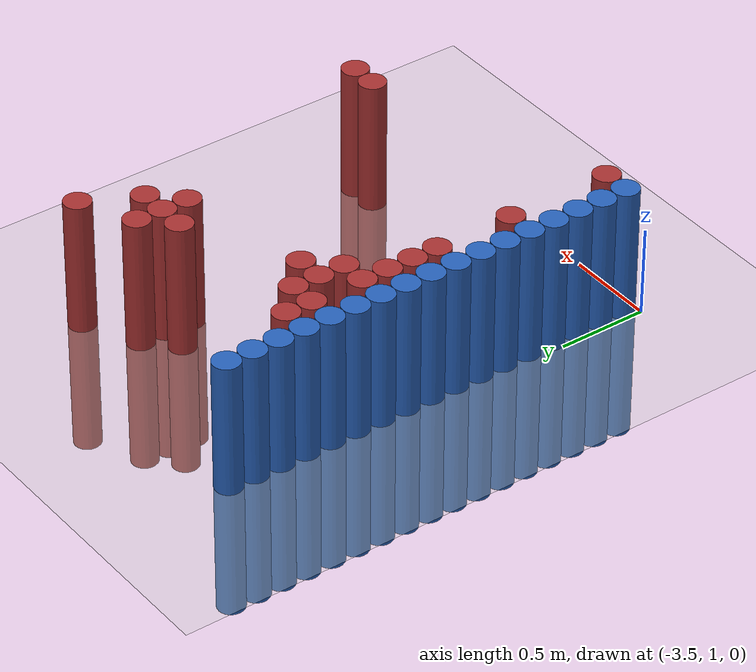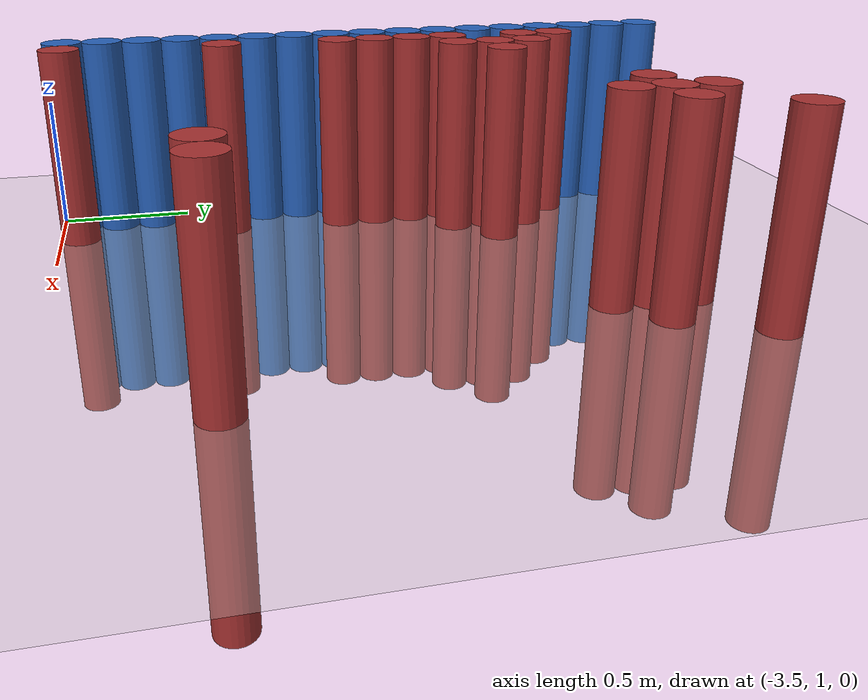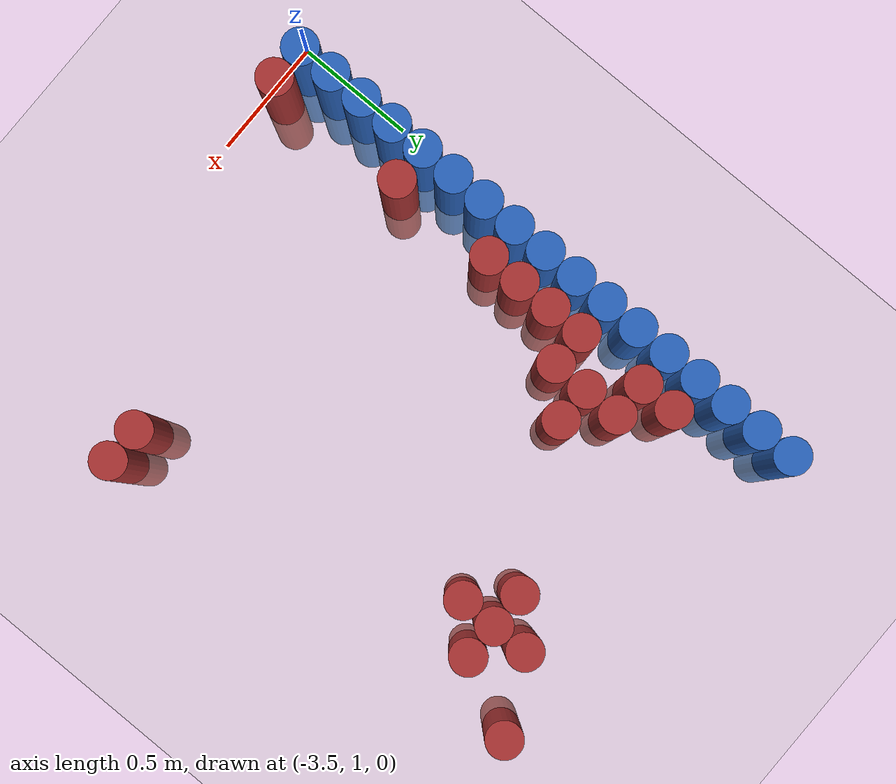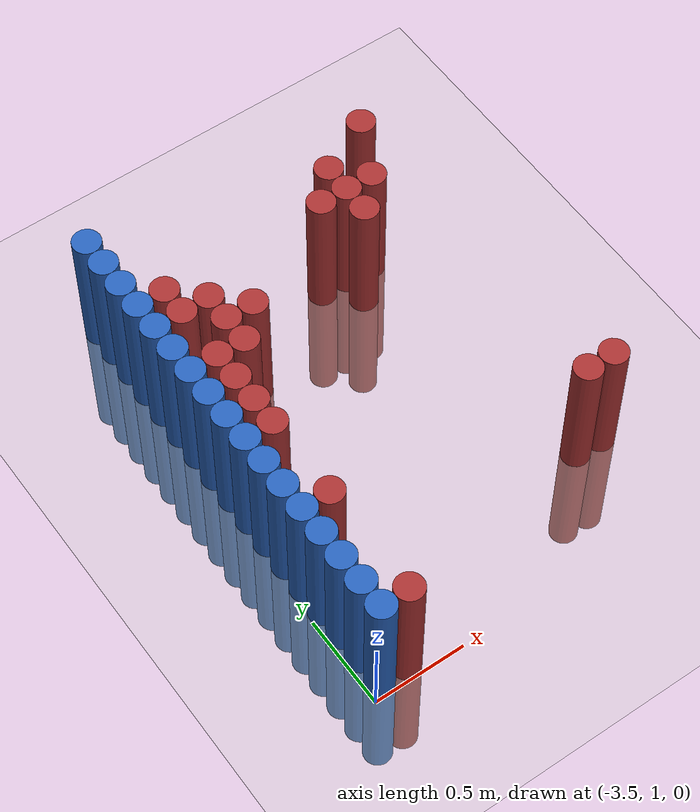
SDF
<sdf version="1.6">
 <world name="default">
  <model name="ground_plane">
   <static>1</static>
   <link name="link">
    <collision name="collision">
     <geometry><plane><normal>0 0 1</normal><size>100 100</size></plane></geometry>
     <surface><friction><ode><mu>100</mu><mu2>50</mu2></ode></friction></surface>
    </collision>
    <visual name="visual">
     <cast_shadows>0</cast_shadows>
     <geometry><plane><normal>0 0 1</normal><size>100 100</size></plane></geometry>
     <material>
      <script><uri>file://media/materials/scripts/gazebo.material</uri><name>Gazebo/Grey</name></script>
     </material>
    </visual>
   </link>
  </model>
  <model name="unit_cylinder_129">
   <static>1</static>
   <pose>-3.425000 1.075000 0.000000 0.000000 0.000000 0.000000</pose>
   <link name="link">
    <inertial>
     <mass>1</mass>
     <inertia><ixx>0.145833</ixx><ixy>0</ixy><ixz>0</ixz><iyy>0.145833</iyy><iyz>0</iyz><izz>0.125</izz></inertia>
    </inertial>
    <collision name="collision">
     <geometry><cylinder><radius>0.075000</radius><length>1.5</length></cylinder></geometry>
    </collision>
    <visual name="visual">
     <geometry><cylinder><radius>0.075000</radius><length>1.5</length></cylinder></geometry>
     <material>
      <ambient>0.152000 0.379000 0.720000 1</ambient>
      <diffuse>0.152000 0.379000 0.720000 1</diffuse>
     </material>
     <material>
      <script><name>Gazebo/Grey</name><uri>file://media/materials/scripts/gazebo.material</uri></script>
     </material>
    </visual>
   </link>
  </model>
  <model name="unit_cylinder_131">
   <static>1</static>
   <pose>-3.425000 1.225000 0.000000 0.000000 0.000000 0.000000</pose>
   <link name="link">
    <inertial>
     <mass>1</mass>
     <inertia><ixx>0.145833</ixx><ixy>0</ixy><ixz>0</ixz><iyy>0.145833</iyy><iyz>0</iyz><izz>0.125</izz></inertia>
    </inertial>
    <collision name="collision">
     <geometry><cylinder><radius>0.075000</radius><length>1.5</length></cylinder></geometry>
    </collision>
    <visual name="visual">
     <geometry><cylinder><radius>0.075000</radius><length>1.5</length></cylinder></geometry>
     <material>
      <ambient>0.152000 0.379000 0.720000 1</ambient>
      <diffuse>0.152000 0.379000 0.720000 1</diffuse>
     </material>
     <material>
      <script><name>Gazebo/Grey</name><uri>file://media/materials/scripts/gazebo.material</uri></script>
     </material>
    </visual>
   </link>
  </model>
  <model name="unit_cylinder_133">
   <static>1</static>
   <pose>-3.425000 1.375000 0.000000 0.000000 0.000000 0.000000</pose>
   <link name="link">
    <inertial>
     <mass>1</mass>
     <inertia><ixx>0.145833</ixx><ixy>0</ixy><ixz>0</ixz><iyy>0.145833</iyy><iyz>0</iyz><izz>0.125</izz></inertia>
    </inertial>
    <collision name="collision">
     <geometry><cylinder><radius>0.075000</radius><length>1.5</length></cylinder></geometry>
    </collision>
    <visual name="visual">
     <geometry><cylinder><radius>0.075000</radius><length>1.5</length></cylinder></geometry>
     <material>
      <ambient>0.152000 0.379000 0.720000 1</ambient>
      <diffuse>0.152000 0.379000 0.720000 1</diffuse>
     </material>
     <material>
      <script><name>Gazebo/Grey</name><uri>file://media/materials/scripts/gazebo.material</uri></script>
     </material>
    </visual>
   </link>
  </model>
  <model name="unit_cylinder_135">
   <static>1</static>
   <pose>-3.425000 1.525000 0.000000 0.000000 0.000000 0.000000</pose>
   <link name="link">
    <inertial>
     <mass>1</mass>
     <inertia><ixx>0.145833</ixx><ixy>0</ixy><ixz>0</ixz><iyy>0.145833</iyy><iyz>0</iyz><izz>0.125</izz></inertia>
    </inertial>
    <collision name="collision">
     <geometry><cylinder><radius>0.075000</radius><length>1.5</length></cylinder></geometry>
    </collision>
    <visual name="visual">
     <geometry><cylinder><radius>0.075000</radius><length>1.5</length></cylinder></geometry>
     <material>
      <ambient>0.152000 0.379000 0.720000 1</ambient>
      <diffuse>0.152000 0.379000 0.720000 1</diffuse>
     </material>
     <material>
      <script><name>Gazebo/Grey</name><uri>file://media/materials/scripts/gazebo.material</uri></script>
     </material>
    </visual>
   </link>
  </model>
  <model name="unit_cylinder_137">
   <static>1</static>
   <pose>-3.425000 1.675000 0.000000 0.000000 0.000000 0.000000</pose>
   <link name="link">
    <inertial>
     <mass>1</mass>
     <inertia><ixx>0.145833</ixx><ixy>0</ixy><ixz>0</ixz><iyy>0.145833</iyy><iyz>0</iyz><izz>0.125</izz></inertia>
    </inertial>
    <collision name="collision">
     <geometry><cylinder><radius>0.075000</radius><length>1.5</length></cylinder></geometry>
    </collision>
    <visual name="visual">
     <geometry><cylinder><radius>0.075000</radius><length>1.5</length></cylinder></geometry>
     <material>
      <ambient>0.152000 0.379000 0.720000 1</ambient>
      <diffuse>0.152000 0.379000 0.720000 1</diffuse>
     </material>
     <material>
      <script><name>Gazebo/Grey</name><uri>file://media/materials/scripts/gazebo.material</uri></script>
     </material>
    </visual>
   </link>
  </model>
  <model name="unit_cylinder_139">
   <static>1</static>
   <pose>-3.425000 1.825000 0.000000 0.000000 0.000000 0.000000</pose>
   <link name="link">
    <inertial>
     <mass>1</mass>
     <inertia><ixx>0.145833</ixx><ixy>0</ixy><ixz>0</ixz><iyy>0.145833</iyy><iyz>0</iyz><izz>0.125</izz></inertia>
    </inertial>
    <collision name="collision">
     <geometry><cylinder><radius>0.075000</radius><length>1.5</length></cylinder></geometry>
    </collision>
    <visual name="visual">
     <geometry><cylinder><radius>0.075000</radius><length>1.5</length></cylinder></geometry>
     <material>
      <ambient>0.152000 0.379000 0.720000 1</ambient>
      <diffuse>0.152000 0.379000 0.720000 1</diffuse>
     </material>
     <material>
      <script><name>Gazebo/Grey</name><uri>file://media/materials/scripts/gazebo.material</uri></script>
     </material>
    </visual>
   </link>
  </model>
  <model name="unit_cylinder_141">
   <static>1</static>
   <pose>-3.425000 1.975000 0.000000 0.000000 0.000000 0.000000</pose>
   <link name="link">
    <inertial>
     <mass>1</mass>
     <inertia><ixx>0.145833</ixx><ixy>0</ixy><ixz>0</ixz><iyy>0.145833</iyy><iyz>0</iyz><izz>0.125</izz></inertia>
    </inertial>
    <collision name="collision">
     <geometry><cylinder><radius>0.075000</radius><length>1.5</length></cylinder></geometry>
    </collision>
    <visual name="visual">
     <geometry><cylinder><radius>0.075000</radius><length>1.5</length></cylinder></geometry>
     <material>
      <ambient>0.152000 0.379000 0.720000 1</ambient>
      <diffuse>0.152000 0.379000 0.720000 1</diffuse>
     </material>
     <material>
      <script><name>Gazebo/Grey</name><uri>file://media/materials/scripts/gazebo.material</uri></script>
     </material>
    </visual>
   </link>
  </model>
  <model name="unit_cylinder_143">
   <static>1</static>
   <pose>-3.425000 2.125000 0.000000 0.000000 0.000000 0.000000</pose>
   <link name="link">
    <inertial>
     <mass>1</mass>
     <inertia><ixx>0.145833</ixx><ixy>0</ixy><ixz>0</ixz><iyy>0.145833</iyy><iyz>0</iyz><izz>0.125</izz></inertia>
    </inertial>
    <collision name="collision">
     <geometry><cylinder><radius>0.075000</radius><length>1.5</length></cylinder></geometry>
    </collision>
    <visual name="visual">
     <geometry><cylinder><radius>0.075000</radius><length>1.5</length></cylinder></geometry>
     <material>
      <ambient>0.152000 0.379000 0.720000 1</ambient>
      <diffuse>0.152000 0.379000 0.720000 1</diffuse>
     </material>
     <material>
      <script><name>Gazebo/Grey</name><uri>file://media/materials/scripts/gazebo.material</uri></script>
     </material>
    </visual>
   </link>
  </model>
  <model name="unit_cylinder_145">
   <static>1</static>
   <pose>-3.425000 2.275000 0.000000 0.000000 0.000000 0.000000</pose>
   <link name="link">
    <inertial>
     <mass>1</mass>
     <inertia><ixx>0.145833</ixx><ixy>0</ixy><ixz>0</ixz><iyy>0.145833</iyy><iyz>0</iyz><izz>0.125</izz></inertia>
    </inertial>
    <collision name="collision">
     <geometry><cylinder><radius>0.075000</radius><length>1.5</length></cylinder></geometry>
    </collision>
    <visual name="visual">
     <geometry><cylinder><radius>0.075000</radius><length>1.5</length></cylinder></geometry>
     <material>
      <ambient>0.152000 0.379000 0.720000 1</ambient>
      <diffuse>0.152000 0.379000 0.720000 1</diffuse>
     </material>
     <material>
      <script><name>Gazebo/Grey</name><uri>file://media/materials/scripts/gazebo.material</uri></script>
     </material>
    </visual>
   </link>
  </model>
  <model name="unit_cylinder_147">
   <static>1</static>
   <pose>-3.425000 2.425000 0.000000 0.000000 0.000000 0.000000</pose>
   <link name="link">
    <inertial>
     <mass>1</mass>
     <inertia><ixx>0.145833</ixx><ixy>0</ixy><ixz>0</ixz><iyy>0.145833</iyy><iyz>0</iyz><izz>0.125</izz></inertia>
    </inertial>
    <collision name="collision">
     <geometry><cylinder><radius>0.075000</radius><length>1.5</length></cylinder></geometry>
    </collision>
    <visual name="visual">
     <geometry><cylinder><radius>0.075000</radius><length>1.5</length></cylinder></geometry>
     <material>
      <ambient>0.152000 0.379000 0.720000 1</ambient>
      <diffuse>0.152000 0.379000 0.720000 1</diffuse>
     </material>
     <material>
      <script><name>Gazebo/Grey</name><uri>file://media/materials/scripts/gazebo.material</uri></script>
     </material>
    </visual>
   </link>
  </model>
  <model name="unit_cylinder_149">
   <static>1</static>
   <pose>-3.425000 2.575000 0.000000 0.000000 0.000000 0.000000</pose>
   <link name="link">
    <inertial>
     <mass>1</mass>
     <inertia><ixx>0.145833</ixx><ixy>0</ixy><ixz>0</ixz><iyy>0.145833</iyy><iyz>0</iyz><izz>0.125</izz></inertia>
    </inertial>
    <collision name="collision">
     <geometry><cylinder><radius>0.075000</radius><length>1.5</length></cylinder></geometry>
    </collision>
    <visual name="visual">
     <geometry><cylinder><radius>0.075000</radius><length>1.5</length></cylinder></geometry>
     <material>
      <ambient>0.152000 0.379000 0.720000 1</ambient>
      <diffuse>0.152000 0.379000 0.720000 1</diffuse>
     </material>
     <material>
      <script><name>Gazebo/Grey</name><uri>file://media/materials/scripts/gazebo.material</uri></script>
     </material>
    </visual>
   </link>
  </model>
  <model name="unit_cylinder_151">
   <static>1</static>
   <pose>-3.425000 2.725000 0.000000 0.000000 0.000000 0.000000</pose>
   <link name="link">
    <inertial>
     <mass>1</mass>
     <inertia><ixx>0.145833</ixx><ixy>0</ixy><ixz>0</ixz><iyy>0.145833</iyy><iyz>0</iyz><izz>0.125</izz></inertia>
    </inertial>
    <collision name="collision">
     <geometry><cylinder><radius>0.075000</radius><length>1.5</length></cylinder></geometry>
    </collision>
    <visual name="visual">
     <geometry><cylinder><radius>0.075000</radius><length>1.5</length></cylinder></geometry>
     <material>
      <ambient>0.152000 0.379000 0.720000 1</ambient>
      <diffuse>0.152000 0.379000 0.720000 1</diffuse>
     </material>
     <material>
      <script><name>Gazebo/Grey</name><uri>file://media/materials/scripts/gazebo.material</uri></script>
     </material>
    </visual>
   </link>
  </model>
  <model name="unit_cylinder_153">
   <static>1</static>
   <pose>-3.425000 2.875000 0.000000 0.000000 0.000000 0.000000</pose>
   <link name="link">
    <inertial>
     <mass>1</mass>
     <inertia><ixx>0.145833</ixx><ixy>0</ixy><ixz>0</ixz><iyy>0.145833</iyy><iyz>0</iyz><izz>0.125</izz></inertia>
    </inertial>
    <collision name="collision">
     <geometry><cylinder><radius>0.075000</radius><length>1.5</length></cylinder></geometry>
    </collision>
    <visual name="visual">
     <geometry><cylinder><radius>0.075000</radius><length>1.5</length></cylinder></geometry>
     <material>
      <ambient>0.152000 0.379000 0.720000 1</ambient>
      <diffuse>0.152000 0.379000 0.720000 1</diffuse>
     </material>
     <material>
      <script><name>Gazebo/Grey</name><uri>file://media/materials/scripts/gazebo.material</uri></script>
     </material>
    </visual>
   </link>
  </model>
  <model name="unit_cylinder_155">
   <static>1</static>
   <pose>-3.425000 3.025000 0.000000 0.000000 0.000000 0.000000</pose>
   <link name="link">
    <inertial>
     <mass>1</mass>
     <inertia><ixx>0.145833</ixx><ixy>0</ixy><ixz>0</ixz><iyy>0.145833</iyy><iyz>0</iyz><izz>0.125</izz></inertia>
    </inertial>
    <collision name="collision">
     <geometry><cylinder><radius>0.075000</radius><length>1.5</length></cylinder></geometry>
    </collision>
    <visual name="visual">
     <geometry><cylinder><radius>0.075000</radius><length>1.5</length></cylinder></geometry>
     <material>
      <ambient>0.152000 0.379000 0.720000 1</ambient>
      <diffuse>0.152000 0.379000 0.720000 1</diffuse>
     </material>
     <material>
      <script><name>Gazebo/Grey</name><uri>file://media/materials/scripts/gazebo.material</uri></script>
     </material>
    </visual>
   </link>
  </model>
  <model name="unit_cylinder_157">
   <static>1</static>
   <pose>-3.425000 3.175000 0.000000 0.000000 0.000000 0.000000</pose>
   <link name="link">
    <inertial>
     <mass>1</mass>
     <inertia><ixx>0.145833</ixx><ixy>0</ixy><ixz>0</ixz><iyy>0.145833</iyy><iyz>0</iyz><izz>0.125</izz></inertia>
    </inertial>
    <collision name="collision">
     <geometry><cylinder><radius>0.075000</radius><length>1.5</length></cylinder></geometry>
    </collision>
    <visual name="visual">
     <geometry><cylinder><radius>0.075000</radius><length>1.5</length></cylinder></geometry>
     <material>
      <ambient>0.152000 0.379000 0.720000 1</ambient>
      <diffuse>0.152000 0.379000 0.720000 1</diffuse>
     </material>
     <material>
      <script><name>Gazebo/Grey</name><uri>file://media/materials/scripts/gazebo.material</uri></script>
     </material>
    </visual>
   </link>
  </model>
  <model name="unit_cylinder_159">
   <static>1</static>
   <pose>-3.425000 3.325000 0.000000 0.000000 0.000000 0.000000</pose>
   <link name="link">
    <inertial>
     <mass>1</mass>
     <inertia><ixx>0.145833</ixx><ixy>0</ixy><ixz>0</ixz><iyy>0.145833</iyy><iyz>0</iyz><izz>0.125</izz></inertia>
    </inertial>
    <collision name="collision">
     <geometry><cylinder><radius>0.075000</radius><length>1.5</length></cylinder></geometry>
    </collision>
    <visual name="visual">
     <geometry><cylinder><radius>0.075000</radius><length>1.5</length></cylinder></geometry>
     <material>
      <ambient>0.152000 0.379000 0.720000 1</ambient>
      <diffuse>0.152000 0.379000 0.720000 1</diffuse>
     </material>
     <material>
      <script><name>Gazebo/Grey</name><uri>file://media/materials/scripts/gazebo.material</uri></script>
     </material>
    </visual>
   </link>
  </model>
  <model name="unit_cylinder_161">
   <static>1</static>
   <pose>-3.425000 3.475000 0.000000 0.000000 0.000000 0.000000</pose>
   <link name="link">
    <inertial>
     <mass>1</mass>
     <inertia><ixx>0.145833</ixx><ixy>0</ixy><ixz>0</ixz><iyy>0.145833</iyy><iyz>0</iyz><izz>0.125</izz></inertia>
    </inertial>
    <collision name="collision">
     <geometry><cylinder><radius>0.075000</radius><length>1.5</length></cylinder></geometry>
    </collision>
    <visual name="visual">
     <geometry><cylinder><radius>0.075000</radius><length>1.5</length></cylinder></geometry>
     <material>
      <ambient>0.152000 0.379000 0.720000 1</ambient>
      <diffuse>0.152000 0.379000 0.720000 1</diffuse>
     </material>
     <material>
      <script><name>Gazebo/Grey</name><uri>file://media/materials/scripts/gazebo.material</uri></script>
     </material>
    </visual>
   </link>
  </model>
  <model name="unit_cylinder_228">
   <static>1</static>
   <pose>-3.425000 1.075000 0.000000 0.000000 0.000000 0.000000</pose>
   <link name="link">
    <inertial>
     <mass>1</mass>
     <inertia><ixx>0.145833</ixx><ixy>0</ixy><ixz>0</ixz><iyy>0.145833</iyy><iyz>0</iyz><izz>0.125</izz></inertia>
    </inertial>
    <collision name="collision">
     <geometry><cylinder><radius>0.075000</radius><length>1.5</length></cylinder></geometry>
    </collision>
    <visual name="visual">
     <geometry><cylinder><radius>0.075000</radius><length>1.5</length></cylinder></geometry>
     <material>
      <ambient>0.152000 0.379000 0.720000 1</ambient>
      <diffuse>0.152000 0.379000 0.720000 1</diffuse>
     </material>
     <material>
      <script><name>Gazebo/Grey</name><uri>file://media/materials/scripts/gazebo.material</uri></script>
     </material>
    </visual>
   </link>
  </model>
  <model name="unit_cylinder_229">
   <static>1</static>
   <pose>-3.425000 1.225000 0.000000 0.000000 0.000000 0.000000</pose>
   <link name="link">
    <inertial>
     <mass>1</mass>
     <inertia><ixx>0.145833</ixx><ixy>0</ixy><ixz>0</ixz><iyy>0.145833</iyy><iyz>0</iyz><izz>0.125</izz></inertia>
    </inertial>
    <collision name="collision">
     <geometry><cylinder><radius>0.075000</radius><length>1.5</length></cylinder></geometry>
    </collision>
    <visual name="visual">
     <geometry><cylinder><radius>0.075000</radius><length>1.5</length></cylinder></geometry>
     <material>
      <ambient>0.152000 0.379000 0.720000 1</ambient>
      <diffuse>0.152000 0.379000 0.720000 1</diffuse>
     </material>
     <material>
      <script><name>Gazebo/Grey</name><uri>file://media/materials/scripts/gazebo.material</uri></script>
     </material>
    </visual>
   </link>
  </model>
  <model name="unit_cylinder_230">
   <static>1</static>
   <pose>-3.425000 1.375000 0.000000 0.000000 0.000000 0.000000</pose>
   <link name="link">
    <inertial>
     <mass>1</mass>
     <inertia><ixx>0.145833</ixx><ixy>0</ixy><ixz>0</ixz><iyy>0.145833</iyy><iyz>0</iyz><izz>0.125</izz></inertia>
    </inertial>
    <collision name="collision">
     <geometry><cylinder><radius>0.075000</radius><length>1.5</length></cylinder></geometry>
    </collision>
    <visual name="visual">
     <geometry><cylinder><radius>0.075000</radius><length>1.5</length></cylinder></geometry>
     <material>
      <ambient>0.152000 0.379000 0.720000 1</ambient>
      <diffuse>0.152000 0.379000 0.720000 1</diffuse>
     </material>
     <material>
      <script><name>Gazebo/Grey</name><uri>file://media/materials/scripts/gazebo.material</uri></script>
     </material>
    </visual>
   </link>
  </model>
  <model name="unit_cylinder_231">
   <static>1</static>
   <pose>-3.425000 1.525000 0.000000 0.000000 0.000000 0.000000</pose>
   <link name="link">
    <inertial>
     <mass>1</mass>
     <inertia><ixx>0.145833</ixx><ixy>0</ixy><ixz>0</ixz><iyy>0.145833</iyy><iyz>0</iyz><izz>0.125</izz></inertia>
    </inertial>
    <collision name="collision">
     <geometry><cylinder><radius>0.075000</radius><length>1.5</length></cylinder></geometry>
    </collision>
    <visual name="visual">
     <geometry><cylinder><radius>0.075000</radius><length>1.5</length></cylinder></geometry>
     <material>
      <ambient>0.152000 0.379000 0.720000 1</ambient>
      <diffuse>0.152000 0.379000 0.720000 1</diffuse>
     </material>
     <material>
      <script><name>Gazebo/Grey</name><uri>file://media/materials/scripts/gazebo.material</uri></script>
     </material>
    </visual>
   </link>
  </model>
  <model name="unit_cylinder_232">
   <static>1</static>
   <pose>-3.425000 1.675000 0.000000 0.000000 0.000000 0.000000</pose>
   <link name="link">
    <inertial>
     <mass>1</mass>
     <inertia><ixx>0.145833</ixx><ixy>0</ixy><ixz>0</ixz><iyy>0.145833</iyy><iyz>0</iyz><izz>0.125</izz></inertia>
    </inertial>
    <collision name="collision">
     <geometry><cylinder><radius>0.075000</radius><length>1.5</length></cylinder></geometry>
    </collision>
    <visual name="visual">
     <geometry><cylinder><radius>0.075000</radius><length>1.5</length></cylinder></geometry>
     <material>
      <ambient>0.152000 0.379000 0.720000 1</ambient>
      <diffuse>0.152000 0.379000 0.720000 1</diffuse>
     </material>
     <material>
      <script><name>Gazebo/Grey</name><uri>file://media/materials/scripts/gazebo.material</uri></script>
     </material>
    </visual>
   </link>
  </model>
  <model name="unit_cylinder_233">
   <static>1</static>
   <pose>-3.425000 1.825000 0.000000 0.000000 0.000000 0.000000</pose>
   <link name="link">
    <inertial>
     <mass>1</mass>
     <inertia><ixx>0.145833</ixx><ixy>0</ixy><ixz>0</ixz><iyy>0.145833</iyy><iyz>0</iyz><izz>0.125</izz></inertia>
    </inertial>
    <collision name="collision">
     <geometry><cylinder><radius>0.075000</radius><length>1.5</length></cylinder></geometry>
    </collision>
    <visual name="visual">
     <geometry><cylinder><radius>0.075000</radius><length>1.5</length></cylinder></geometry>
     <material>
      <ambient>0.152000 0.379000 0.720000 1</ambient>
      <diffuse>0.152000 0.379000 0.720000 1</diffuse>
     </material>
     <material>
      <script><name>Gazebo/Grey</name><uri>file://media/materials/scripts/gazebo.material</uri></script>
     </material>
    </visual>
   </link>
  </model>
  <model name="unit_cylinder_234">
   <static>1</static>
   <pose>-3.425000 1.975000 0.000000 0.000000 0.000000 0.000000</pose>
   <link name="link">
    <inertial>
     <mass>1</mass>
     <inertia><ixx>0.145833</ixx><ixy>0</ixy><ixz>0</ixz><iyy>0.145833</iyy><iyz>0</iyz><izz>0.125</izz></inertia>
    </inertial>
    <collision name="collision">
     <geometry><cylinder><radius>0.075000</radius><length>1.5</length></cylinder></geometry>
    </collision>
    <visual name="visual">
     <geometry><cylinder><radius>0.075000</radius><length>1.5</length></cylinder></geometry>
     <material>
      <ambient>0.152000 0.379000 0.720000 1</ambient>
      <diffuse>0.152000 0.379000 0.720000 1</diffuse>
     </material>
     <material>
      <script><name>Gazebo/Grey</name><uri>file://media/materials/scripts/gazebo.material</uri></script>
     </material>
    </visual>
   </link>
  </model>
  <model name="unit_cylinder_235">
   <static>1</static>
   <pose>-3.425000 2.125000 0.000000 0.000000 0.000000 0.000000</pose>
   <link name="link">
    <inertial>
     <mass>1</mass>
     <inertia><ixx>0.145833</ixx><ixy>0</ixy><ixz>0</ixz><iyy>0.145833</iyy><iyz>0</iyz><izz>0.125</izz></inertia>
    </inertial>
    <collision name="collision">
     <geometry><cylinder><radius>0.075000</radius><length>1.5</length></cylinder></geometry>
    </collision>
    <visual name="visual">
     <geometry><cylinder><radius>0.075000</radius><length>1.5</length></cylinder></geometry>
     <material>
      <ambient>0.152000 0.379000 0.720000 1</ambient>
      <diffuse>0.152000 0.379000 0.720000 1</diffuse>
     </material>
     <material>
      <script><name>Gazebo/Grey</name><uri>file://media/materials/scripts/gazebo.material</uri></script>
     </material>
    </visual>
   </link>
  </model>
  <model name="unit_cylinder_236">
   <static>1</static>
   <pose>-3.425000 2.275000 0.000000 0.000000 0.000000 0.000000</pose>
   <link name="link">
    <inertial>
     <mass>1</mass>
     <inertia><ixx>0.145833</ixx><ixy>0</ixy><ixz>0</ixz><iyy>0.145833</iyy><iyz>0</iyz><izz>0.125</izz></inertia>
    </inertial>
    <collision name="collision">
     <geometry><cylinder><radius>0.075000</radius><length>1.5</length></cylinder></geometry>
    </collision>
    <visual name="visual">
     <geometry><cylinder><radius>0.075000</radius><length>1.5</length></cylinder></geometry>
     <material>
      <ambient>0.152000 0.379000 0.720000 1</ambient>
      <diffuse>0.152000 0.379000 0.720000 1</diffuse>
     </material>
     <material>
      <script><name>Gazebo/Grey</name><uri>file://media/materials/scripts/gazebo.material</uri></script>
     </material>
    </visual>
   </link>
  </model>
  <model name="unit_cylinder_237">
   <static>1</static>
   <pose>-3.425000 2.425000 0.000000 0.000000 0.000000 0.000000</pose>
   <link name="link">
    <inertial>
     <mass>1</mass>
     <inertia><ixx>0.145833</ixx><ixy>0</ixy><ixz>0</ixz><iyy>0.145833</iyy><iyz>0</iyz><izz>0.125</izz></inertia>
    </inertial>
    <collision name="collision">
     <geometry><cylinder><radius>0.075000</radius><length>1.5</length></cylinder></geometry>
    </collision>
    <visual name="visual">
     <geometry><cylinder><radius>0.075000</radius><length>1.5</length></cylinder></geometry>
     <material>
      <ambient>0.152000 0.379000 0.720000 1</ambient>
      <diffuse>0.152000 0.379000 0.720000 1</diffuse>
     </material>
     <material>
      <script><name>Gazebo/Grey</name><uri>file://media/materials/scripts/gazebo.material</uri></script>
     </material>
    </visual>
   </link>
  </model>
  <model name="unit_cylinder_238">
   <static>1</static>
   <pose>-3.425000 2.575000 0.000000 0.000000 0.000000 0.000000</pose>
   <link name="link">
    <inertial>
     <mass>1</mass>
     <inertia><ixx>0.145833</ixx><ixy>0</ixy><ixz>0</ixz><iyy>0.145833</iyy><iyz>0</iyz><izz>0.125</izz></inertia>
    </inertial>
    <collision name="collision">
     <geometry><cylinder><radius>0.075000</radius><length>1.5</length></cylinder></geometry>
    </collision>
    <visual name="visual">
     <geometry><cylinder><radius>0.075000</radius><length>1.5</length></cylinder></geometry>
     <material>
      <ambient>0.152000 0.379000 0.720000 1</ambient>
      <diffuse>0.152000 0.379000 0.720000 1</diffuse>
     </material>
     <material>
      <script><name>Gazebo/Grey</name><uri>file://media/materials/scripts/gazebo.material</uri></script>
     </material>
    </visual>
   </link>
  </model>
  <model name="unit_cylinder_239">
   <static>1</static>
   <pose>-3.425000 2.725000 0.000000 0.000000 0.000000 0.000000</pose>
   <link name="link">
    <inertial>
     <mass>1</mass>
     <inertia><ixx>0.145833</ixx><ixy>0</ixy><ixz>0</ixz><iyy>0.145833</iyy><iyz>0</iyz><izz>0.125</izz></inertia>
    </inertial>
    <collision name="collision">
     <geometry><cylinder><radius>0.075000</radius><length>1.5</length></cylinder></geometry>
    </collision>
    <visual name="visual">
     <geometry><cylinder><radius>0.075000</radius><length>1.5</length></cylinder></geometry>
     <material>
      <ambient>0.152000 0.379000 0.720000 1</ambient>
      <diffuse>0.152000 0.379000 0.720000 1</diffuse>
     </material>
     <material>
      <script><name>Gazebo/Grey</name><uri>file://media/materials/scripts/gazebo.material</uri></script>
     </material>
    </visual>
   </link>
  </model>
  <model name="unit_cylinder_240">
   <static>1</static>
   <pose>-3.425000 2.875000 0.000000 0.000000 0.000000 0.000000</pose>
   <link name="link">
    <inertial>
     <mass>1</mass>
     <inertia><ixx>0.145833</ixx><ixy>0</ixy><ixz>0</ixz><iyy>0.145833</iyy><iyz>0</iyz><izz>0.125</izz></inertia>
    </inertial>
    <collision name="collision">
     <geometry><cylinder><radius>0.075000</radius><length>1.5</length></cylinder></geometry>
    </collision>
    <visual name="visual">
     <geometry><cylinder><radius>0.075000</radius><length>1.5</length></cylinder></geometry>
     <material>
      <ambient>0.152000 0.379000 0.720000 1</ambient>
      <diffuse>0.152000 0.379000 0.720000 1</diffuse>
     </material>
     <material>
      <script><name>Gazebo/Grey</name><uri>file://media/materials/scripts/gazebo.material</uri></script>
     </material>
    </visual>
   </link>
  </model>
  <model name="unit_cylinder_241">
   <static>1</static>
   <pose>-3.425000 3.025000 0.000000 0.000000 0.000000 0.000000</pose>
   <link name="link">
    <inertial>
     <mass>1</mass>
     <inertia><ixx>0.145833</ixx><ixy>0</ixy><ixz>0</ixz><iyy>0.145833</iyy><iyz>0</iyz><izz>0.125</izz></inertia>
    </inertial>
    <collision name="collision">
     <geometry><cylinder><radius>0.075000</radius><length>1.5</length></cylinder></geometry>
    </collision>
    <visual name="visual">
     <geometry><cylinder><radius>0.075000</radius><length>1.5</length></cylinder></geometry>
     <material>
      <ambient>0.152000 0.379000 0.720000 1</ambient>
      <diffuse>0.152000 0.379000 0.720000 1</diffuse>
     </material>
     <material>
      <script><name>Gazebo/Grey</name><uri>file://media/materials/scripts/gazebo.material</uri></script>
     </material>
    </visual>
   </link>
  </model>
  <model name="unit_cylinder_242">
   <static>1</static>
   <pose>-3.425000 3.175000 0.000000 0.000000 0.000000 0.000000</pose>
   <link name="link">
    <inertial>
     <mass>1</mass>
     <inertia><ixx>0.145833</ixx><ixy>0</ixy><ixz>0</ixz><iyy>0.145833</iyy><iyz>0</iyz><izz>0.125</izz></inertia>
    </inertial>
    <collision name="collision">
     <geometry><cylinder><radius>0.075000</radius><length>1.5</length></cylinder></geometry>
    </collision>
    <visual name="visual">
     <geometry><cylinder><radius>0.075000</radius><length>1.5</length></cylinder></geometry>
     <material>
      <ambient>0.152000 0.379000 0.720000 1</ambient>
      <diffuse>0.152000 0.379000 0.720000 1</diffuse>
     </material>
     <material>
      <script><name>Gazebo/Grey</name><uri>file://media/materials/scripts/gazebo.material</uri></script>
     </material>
    </visual>
   </link>
  </model>
  <model name="unit_cylinder_243">
   <static>1</static>
   <pose>-3.425000 3.325000 0.000000 0.000000 0.000000 0.000000</pose>
   <link name="link">
    <inertial>
     <mass>1</mass>
     <inertia><ixx>0.145833</ixx><ixy>0</ixy><ixz>0</ixz><iyy>0.145833</iyy><iyz>0</iyz><izz>0.125</izz></inertia>
    </inertial>
    <collision name="collision">
     <geometry><cylinder><radius>0.075000</radius><length>1.5</length></cylinder></geometry>
    </collision>
    <visual name="visual">
     <geometry><cylinder><radius>0.075000</radius><length>1.5</length></cylinder></geometry>
     <material>
      <ambient>0.152000 0.379000 0.720000 1</ambient>
      <diffuse>0.152000 0.379000 0.720000 1</diffuse>
     </material>
     <material>
      <script><name>Gazebo/Grey</name><uri>file://media/materials/scripts/gazebo.material</uri></script>
     </material>
    </visual>
   </link>
  </model>
  <model name="unit_cylinder_271">
   <static>1</static>
   <pose>-3.275000 1.075000 0.000000 0.000000 0.000000 0.000000</pose>
   <link name="link">
    <inertial>
     <mass>1</mass>
     <inertia><ixx>0.145833</ixx><ixy>0</ixy><ixz>0</ixz><iyy>0.145833</iyy><iyz>0</iyz><izz>0.125</izz></inertia>
    </inertial>
    <collision name="collision">
     <geometry><cylinder><radius>0.075000</radius><length>1.5</length></cylinder></geometry>
    </collision>
    <visual name="visual">
     <geometry><cylinder><radius>0.075000</radius><length>1.5</length></cylinder></geometry>
     <material>
      <ambient>0.648000 0.192000 0.192000 1</ambient>
      <diffuse>0.648000 0.192000 0.192000 1</diffuse>
     </material>
     <material>
      <script><name>Gazebo/Grey</name><uri>file://media/materials/scripts/gazebo.material</uri></script>
     </material>
    </visual>
   </link>
  </model>
  <model name="unit_cylinder_272">
   <static>1</static>
   <pose>-3.275000 1.675000 0.000000 0.000000 0.000000 0.000000</pose>
   <link name="link">
    <inertial>
     <mass>1</mass>
     <inertia><ixx>0.145833</ixx><ixy>0</ixy><ixz>0</ixz><iyy>0.145833</iyy><iyz>0</iyz><izz>0.125</izz></inertia>
    </inertial>
    <collision name="collision">
     <geometry><cylinder><radius>0.075000</radius><length>1.5</length></cylinder></geometry>
    </collision>
    <visual name="visual">
     <geometry><cylinder><radius>0.075000</radius><length>1.5</length></cylinder></geometry>
     <material>
      <ambient>0.648000 0.192000 0.192000 1</ambient>
      <diffuse>0.648000 0.192000 0.192000 1</diffuse>
     </material>
     <material>
      <script><name>Gazebo/Grey</name><uri>file://media/materials/scripts/gazebo.material</uri></script>
     </material>
    </visual>
   </link>
  </model>
  <model name="unit_cylinder_273">
   <static>1</static>
   <pose>-3.275000 2.125000 0.000000 0.000000 0.000000 0.000000</pose>
   <link name="link">
    <inertial>
     <mass>1</mass>
     <inertia><ixx>0.145833</ixx><ixy>0</ixy><ixz>0</ixz><iyy>0.145833</iyy><iyz>0</iyz><izz>0.125</izz></inertia>
    </inertial>
    <collision name="collision">
     <geometry><cylinder><radius>0.075000</radius><length>1.5</length></cylinder></geometry>
    </collision>
    <visual name="visual">
     <geometry><cylinder><radius>0.075000</radius><length>1.5</length></cylinder></geometry>
     <material>
      <ambient>0.648000 0.192000 0.192000 1</ambient>
      <diffuse>0.648000 0.192000 0.192000 1</diffuse>
     </material>
     <material>
      <script><name>Gazebo/Grey</name><uri>file://media/materials/scripts/gazebo.material</uri></script>
     </material>
    </visual>
   </link>
  </model>
  <model name="unit_cylinder_274">
   <static>1</static>
   <pose>-3.275000 2.275000 0.000000 0.000000 0.000000 0.000000</pose>
   <link name="link">
    <inertial>
     <mass>1</mass>
     <inertia><ixx>0.145833</ixx><ixy>0</ixy><ixz>0</ixz><iyy>0.145833</iyy><iyz>0</iyz><izz>0.125</izz></inertia>
    </inertial>
    <collision name="collision">
     <geometry><cylinder><radius>0.075000</radius><length>1.5</length></cylinder></geometry>
    </collision>
    <visual name="visual">
     <geometry><cylinder><radius>0.075000</radius><length>1.5</length></cylinder></geometry>
     <material>
      <ambient>0.648000 0.192000 0.192000 1</ambient>
      <diffuse>0.648000 0.192000 0.192000 1</diffuse>
     </material>
     <material>
      <script><name>Gazebo/Grey</name><uri>file://media/materials/scripts/gazebo.material</uri></script>
     </material>
    </visual>
   </link>
  </model>
  <model name="unit_cylinder_275">
   <static>1</static>
   <pose>-3.275000 2.425000 0.000000 0.000000 0.000000 0.000000</pose>
   <link name="link">
    <inertial>
     <mass>1</mass>
     <inertia><ixx>0.145833</ixx><ixy>0</ixy><ixz>0</ixz><iyy>0.145833</iyy><iyz>0</iyz><izz>0.125</izz></inertia>
    </inertial>
    <collision name="collision">
     <geometry><cylinder><radius>0.075000</radius><length>1.5</length></cylinder></geometry>
    </collision>
    <visual name="visual">
     <geometry><cylinder><radius>0.075000</radius><length>1.5</length></cylinder></geometry>
     <material>
      <ambient>0.648000 0.192000 0.192000 1</ambient>
      <diffuse>0.648000 0.192000 0.192000 1</diffuse>
     </material>
     <material>
      <script><name>Gazebo/Grey</name><uri>file://media/materials/scripts/gazebo.material</uri></script>
     </material>
    </visual>
   </link>
  </model>
  <model name="unit_cylinder_276">
   <static>1</static>
   <pose>-3.275000 2.575000 0.000000 0.000000 0.000000 0.000000</pose>
   <link name="link">
    <inertial>
     <mass>1</mass>
     <inertia><ixx>0.145833</ixx><ixy>0</ixy><ixz>0</ixz><iyy>0.145833</iyy><iyz>0</iyz><izz>0.125</izz></inertia>
    </inertial>
    <collision name="collision">
     <geometry><cylinder><radius>0.075000</radius><length>1.5</length></cylinder></geometry>
    </collision>
    <visual name="visual">
     <geometry><cylinder><radius>0.075000</radius><length>1.5</length></cylinder></geometry>
     <material>
      <ambient>0.648000 0.192000 0.192000 1</ambient>
      <diffuse>0.648000 0.192000 0.192000 1</diffuse>
     </material>
     <material>
      <script><name>Gazebo/Grey</name><uri>file://media/materials/scripts/gazebo.material</uri></script>
     </material>
    </visual>
   </link>
  </model>
  <model name="unit_cylinder_277">
   <static>1</static>
   <pose>-3.275000 2.875000 0.000000 0.000000 0.000000 0.000000</pose>
   <link name="link">
    <inertial>
     <mass>1</mass>
     <inertia><ixx>0.145833</ixx><ixy>0</ixy><ixz>0</ixz><iyy>0.145833</iyy><iyz>0</iyz><izz>0.125</izz></inertia>
    </inertial>
    <collision name="collision">
     <geometry><cylinder><radius>0.075000</radius><length>1.5</length></cylinder></geometry>
    </collision>
    <visual name="visual">
     <geometry><cylinder><radius>0.075000</radius><length>1.5</length></cylinder></geometry>
     <material>
      <ambient>0.648000 0.192000 0.192000 1</ambient>
      <diffuse>0.648000 0.192000 0.192000 1</diffuse>
     </material>
     <material>
      <script><name>Gazebo/Grey</name><uri>file://media/materials/scripts/gazebo.material</uri></script>
     </material>
    </visual>
   </link>
  </model>
  <model name="unit_cylinder_278">
   <static>1</static>
   <pose>-3.275000 3.025000 0.000000 0.000000 0.000000 0.000000</pose>
   <link name="link">
    <inertial>
     <mass>1</mass>
     <inertia><ixx>0.145833</ixx><ixy>0</ixy><ixz>0</ixz><iyy>0.145833</iyy><iyz>0</iyz><izz>0.125</izz></inertia>
    </inertial>
    <collision name="collision">
     <geometry><cylinder><radius>0.075000</radius><length>1.5</length></cylinder></geometry>
    </collision>
    <visual name="visual">
     <geometry><cylinder><radius>0.075000</radius><length>1.5</length></cylinder></geometry>
     <material>
      <ambient>0.648000 0.192000 0.192000 1</ambient>
      <diffuse>0.648000 0.192000 0.192000 1</diffuse>
     </material>
     <material>
      <script><name>Gazebo/Grey</name><uri>file://media/materials/scripts/gazebo.material</uri></script>
     </material>
    </visual>
   </link>
  </model>
  <model name="unit_cylinder_288">
   <static>1</static>
   <pose>-3.125000 2.575000 0.000000 0.000000 0.000000 0.000000</pose>
   <link name="link">
    <inertial>
     <mass>1</mass>
     <inertia><ixx>0.145833</ixx><ixy>0</ixy><ixz>0</ixz><iyy>0.145833</iyy><iyz>0</iyz><izz>0.125</izz></inertia>
    </inertial>
    <collision name="collision">
     <geometry><cylinder><radius>0.075000</radius><length>1.5</length></cylinder></geometry>
    </collision>
    <visual name="visual">
     <geometry><cylinder><radius>0.075000</radius><length>1.5</length></cylinder></geometry>
     <material>
      <ambient>0.648000 0.192000 0.192000 1</ambient>
      <diffuse>0.648000 0.192000 0.192000 1</diffuse>
     </material>
     <material>
      <script><name>Gazebo/Grey</name><uri>file://media/materials/scripts/gazebo.material</uri></script>
     </material>
    </visual>
   </link>
  </model>
  <model name="unit_cylinder_289">
   <static>1</static>
   <pose>-3.125000 2.725000 0.000000 0.000000 0.000000 0.000000</pose>
   <link name="link">
    <inertial>
     <mass>1</mass>
     <inertia><ixx>0.145833</ixx><ixy>0</ixy><ixz>0</ixz><iyy>0.145833</iyy><iyz>0</iyz><izz>0.125</izz></inertia>
    </inertial>
    <collision name="collision">
     <geometry><cylinder><radius>0.075000</radius><length>1.5</length></cylinder></geometry>
    </collision>
    <visual name="visual">
     <geometry><cylinder><radius>0.075000</radius><length>1.5</length></cylinder></geometry>
     <material>
      <ambient>0.648000 0.192000 0.192000 1</ambient>
      <diffuse>0.648000 0.192000 0.192000 1</diffuse>
     </material>
     <material>
      <script><name>Gazebo/Grey</name><uri>file://media/materials/scripts/gazebo.material</uri></script>
     </material>
    </visual>
   </link>
  </model>
  <model name="unit_cylinder_290">
   <static>1</static>
   <pose>-3.125000 2.875000 0.000000 0.000000 0.000000 0.000000</pose>
   <link name="link">
    <inertial>
     <mass>1</mass>
     <inertia><ixx>0.145833</ixx><ixy>0</ixy><ixz>0</ixz><iyy>0.145833</iyy><iyz>0</iyz><izz>0.125</izz></inertia>
    </inertial>
    <collision name="collision">
     <geometry><cylinder><radius>0.075000</radius><length>1.5</length></cylinder></geometry>
    </collision>
    <visual name="visual">
     <geometry><cylinder><radius>0.075000</radius><length>1.5</length></cylinder></geometry>
     <material>
      <ambient>0.648000 0.192000 0.192000 1</ambient>
      <diffuse>0.648000 0.192000 0.192000 1</diffuse>
     </material>
     <material>
      <script><name>Gazebo/Grey</name><uri>file://media/materials/scripts/gazebo.material</uri></script>
     </material>
    </visual>
   </link>
  </model>
  <model name="unit_cylinder_296">
   <static>1</static>
   <pose>-2.975000 2.725000 0.000000 0.000000 0.000000 0.000000</pose>
   <link name="link">
    <inertial>
     <mass>1</mass>
     <inertia><ixx>0.145833</ixx><ixy>0</ixy><ixz>0</ixz><iyy>0.145833</iyy><iyz>0</iyz><izz>0.125</izz></inertia>
    </inertial>
    <collision name="collision">
     <geometry><cylinder><radius>0.075000</radius><length>1.5</length></cylinder></geometry>
    </collision>
    <visual name="visual">
     <geometry><cylinder><radius>0.075000</radius><length>1.5</length></cylinder></geometry>
     <material>
      <ambient>0.648000 0.192000 0.192000 1</ambient>
      <diffuse>0.648000 0.192000 0.192000 1</diffuse>
     </material>
     <material>
      <script><name>Gazebo/Grey</name><uri>file://media/materials/scripts/gazebo.material</uri></script>
     </material>
    </visual>
   </link>
  </model>
  <model name="unit_cylinder_310">
   <static>1</static>
   <pose>-2.375000 3.025000 0.000000 0.000000 0.000000 0.000000</pose>
   <link name="link">
    <inertial>
     <mass>1</mass>
     <inertia><ixx>0.145833</ixx><ixy>0</ixy><ixz>0</ixz><iyy>0.145833</iyy><iyz>0</iyz><izz>0.125</izz></inertia>
    </inertial>
    <collision name="collision">
     <geometry><cylinder><radius>0.075000</radius><length>1.5</length></cylinder></geometry>
    </collision>
    <visual name="visual">
     <geometry><cylinder><radius>0.075000</radius><length>1.5</length></cylinder></geometry>
     <material>
      <ambient>0.648000 0.192000 0.192000 1</ambient>
      <diffuse>0.648000 0.192000 0.192000 1</diffuse>
     </material>
     <material>
      <script><name>Gazebo/Grey</name><uri>file://media/materials/scripts/gazebo.material</uri></script>
     </material>
    </visual>
   </link>
  </model>
  <model name="unit_cylinder_311">
   <static>1</static>
   <pose>-2.225000 2.875000 0.000000 0.000000 0.000000 0.000000</pose>
   <link name="link">
    <inertial>
     <mass>1</mass>
     <inertia><ixx>0.145833</ixx><ixy>0</ixy><ixz>0</ixz><iyy>0.145833</iyy><iyz>0</iyz><izz>0.125</izz></inertia>
    </inertial>
    <collision name="collision">
     <geometry><cylinder><radius>0.075000</radius><length>1.5</length></cylinder></geometry>
    </collision>
    <visual name="visual">
     <geometry><cylinder><radius>0.075000</radius><length>1.5</length></cylinder></geometry>
     <material>
      <ambient>0.648000 0.192000 0.192000 1</ambient>
      <diffuse>0.648000 0.192000 0.192000 1</diffuse>
     </material>
     <material>
      <script><name>Gazebo/Grey</name><uri>file://media/materials/scripts/gazebo.material</uri></script>
     </material>
    </visual>
   </link>
  </model>
  <model name="unit_cylinder_312">
   <static>1</static>
   <pose>-2.225000 3.025000 0.000000 0.000000 0.000000 0.000000</pose>
   <link name="link">
    <inertial>
     <mass>1</mass>
     <inertia><ixx>0.145833</ixx><ixy>0</ixy><ixz>0</ixz><iyy>0.145833</iyy><iyz>0</iyz><izz>0.125</izz></inertia>
    </inertial>
    <collision name="collision">
     <geometry><cylinder><radius>0.075000</radius><length>1.5</length></cylinder></geometry>
    </collision>
    <visual name="visual">
     <geometry><cylinder><radius>0.075000</radius><length>1.5</length></cylinder></geometry>
     <material>
      <ambient>0.648000 0.192000 0.192000 1</ambient>
      <diffuse>0.648000 0.192000 0.192000 1</diffuse>
     </material>
     <material>
      <script><name>Gazebo/Grey</name><uri>file://media/materials/scripts/gazebo.material</uri></script>
     </material>
    </visual>
   </link>
  </model>
  <model name="unit_cylinder_313">
   <static>1</static>
   <pose>-2.225000 3.175000 0.000000 0.000000 0.000000 0.000000</pose>
   <link name="link">
    <inertial>
     <mass>1</mass>
     <inertia><ixx>0.145833</ixx><ixy>0</ixy><ixz>0</ixz><iyy>0.145833</iyy><iyz>0</iyz><izz>0.125</izz></inertia>
    </inertial>
    <collision name="collision">
     <geometry><cylinder><radius>0.075000</radius><length>1.5</length></cylinder></geometry>
    </collision>
    <visual name="visual">
     <geometry><cylinder><radius>0.075000</radius><length>1.5</length></cylinder></geometry>
     <material>
      <ambient>0.648000 0.192000 0.192000 1</ambient>
      <diffuse>0.648000 0.192000 0.192000 1</diffuse>
     </material>
     <material>
      <script><name>Gazebo/Grey</name><uri>file://media/materials/scripts/gazebo.material</uri></script>
     </material>
    </visual>
   </link>
  </model>
  <model name="unit_cylinder_315">
   <static>1</static>
   <pose>-2.075000 3.025000 0.000000 0.000000 0.000000 0.000000</pose>
   <link name="link">
    <inertial>
     <mass>1</mass>
     <inertia><ixx>0.145833</ixx><ixy>0</ixy><ixz>0</ixz><iyy>0.145833</iyy><iyz>0</iyz><izz>0.125</izz></inertia>
    </inertial>
    <collision name="collision">
     <geometry><cylinder><radius>0.075000</radius><length>1.5</length></cylinder></geometry>
    </collision>
    <visual name="visual">
     <geometry><cylinder><radius>0.075000</radius><length>1.5</length></cylinder></geometry>
     <material>
      <ambient>0.648000 0.192000 0.192000 1</ambient>
      <diffuse>0.648000 0.192000 0.192000 1</diffuse>
     </material>
     <material>
      <script><name>Gazebo/Grey</name><uri>file://media/materials/scripts/gazebo.material</uri></script>
     </material>
    </visual>
   </link>
  </model>
  <model name="unit_cylinder_319">
   <static>1</static>
   <pose>-1.925000 1.525000 0.000000 0.000000 0.000000 0.000000</pose>
   <link name="link">
    <inertial>
     <mass>1</mass>
     <inertia><ixx>0.145833</ixx><ixy>0</ixy><ixz>0</ixz><iyy>0.145833</iyy><iyz>0</iyz><izz>0.125</izz></inertia>
    </inertial>
    <collision name="collision">
     <geometry><cylinder><radius>0.075000</radius><length>1.5</length></cylinder></geometry>
    </collision>
    <visual name="visual">
     <geometry><cylinder><radius>0.075000</radius><length>1.5</length></cylinder></geometry>
     <material>
      <ambient>0.648000 0.192000 0.192000 1</ambient>
      <diffuse>0.648000 0.192000 0.192000 1</diffuse>
     </material>
     <material>
      <script><name>Gazebo/Grey</name><uri>file://media/materials/scripts/gazebo.material</uri></script>
     </material>
    </visual>
   </link>
  </model>
  <model name="unit_cylinder_320">
   <static>1</static>
   <pose>-1.925000 3.325000 0.000000 0.000000 0.000000 0.000000</pose>
   <link name="link">
    <inertial>
     <mass>1</mass>
     <inertia><ixx>0.145833</ixx><ixy>0</ixy><ixz>0</ixz><iyy>0.145833</iyy><iyz>0</iyz><izz>0.125</izz></inertia>
    </inertial>
    <collision name="collision">
     <geometry><cylinder><radius>0.075000</radius><length>1.5</length></cylinder></geometry>
    </collision>
    <visual name="visual">
     <geometry><cylinder><radius>0.075000</radius><length>1.5</length></cylinder></geometry>
     <material>
      <ambient>0.648000 0.192000 0.192000 1</ambient>
      <diffuse>0.648000 0.192000 0.192000 1</diffuse>
     </material>
     <material>
      <script><name>Gazebo/Grey</name><uri>file://media/materials/scripts/gazebo.material</uri></script>
     </material>
    </visual>
   </link>
  </model>
  <model name="unit_cylinder_322">
   <static>1</static>
   <pose>-1.775000 1.525000 0.000000 0.000000 0.000000 0.000000</pose>
   <link name="link">
    <inertial>
     <mass>1</mass>
     <inertia><ixx>0.145833</ixx><ixy>0</ixy><ixz>0</ixz><iyy>0.145833</iyy><iyz>0</iyz><izz>0.125</izz></inertia>
    </inertial>
    <collision name="collision">
     <geometry><cylinder><radius>0.075000</radius><length>1.5</length></cylinder></geometry>
    </collision>
    <visual name="visual">
     <geometry><cylinder><radius>0.075000</radius><length>1.5</length></cylinder></geometry>
     <material>
      <ambient>0.648000 0.192000 0.192000 1</ambient>
      <diffuse>0.648000 0.192000 0.192000 1</diffuse>
     </material>
     <material>
      <script><name>Gazebo/Grey</name><uri>file://media/materials/scripts/gazebo.material</uri></script>
     </material>
    </visual>
   </link>
  </model>
 </world>
</sdf>
